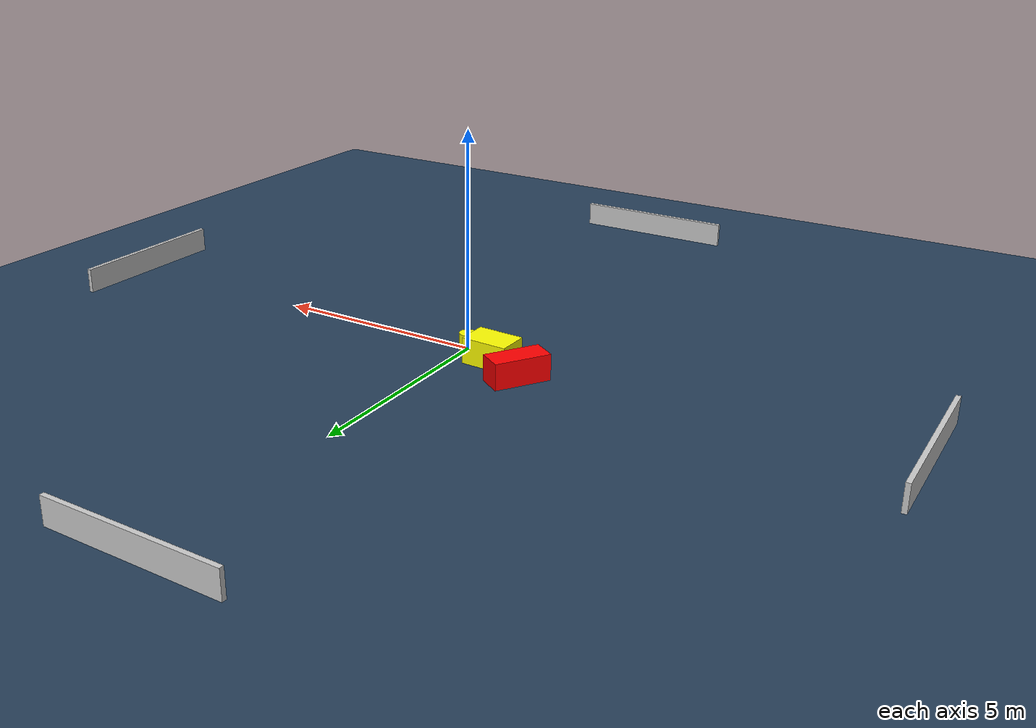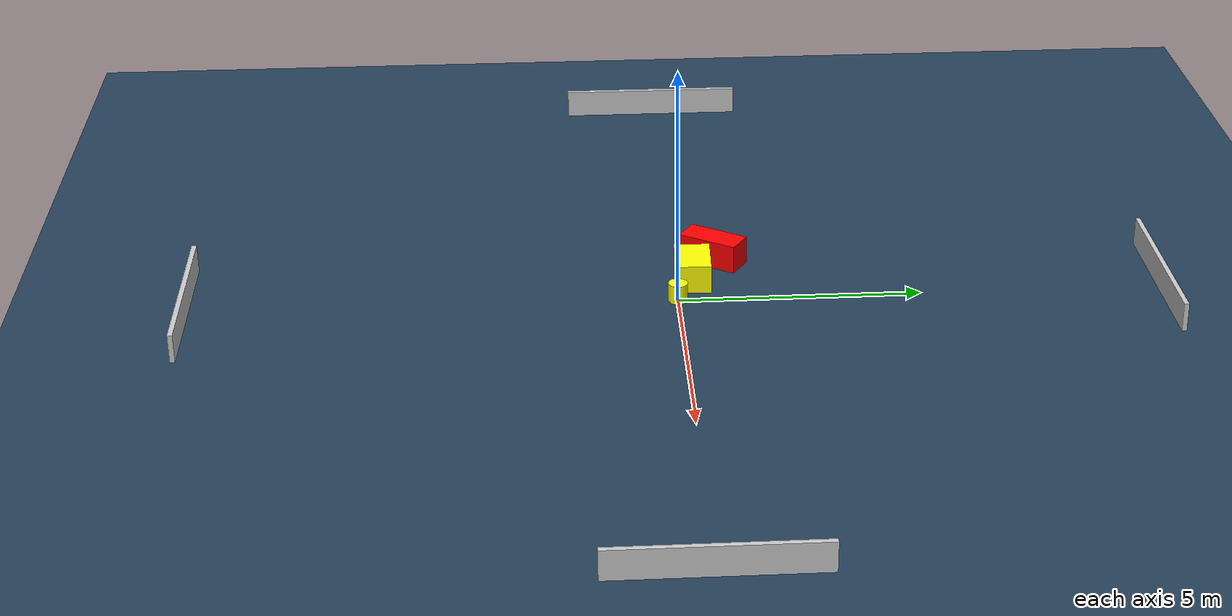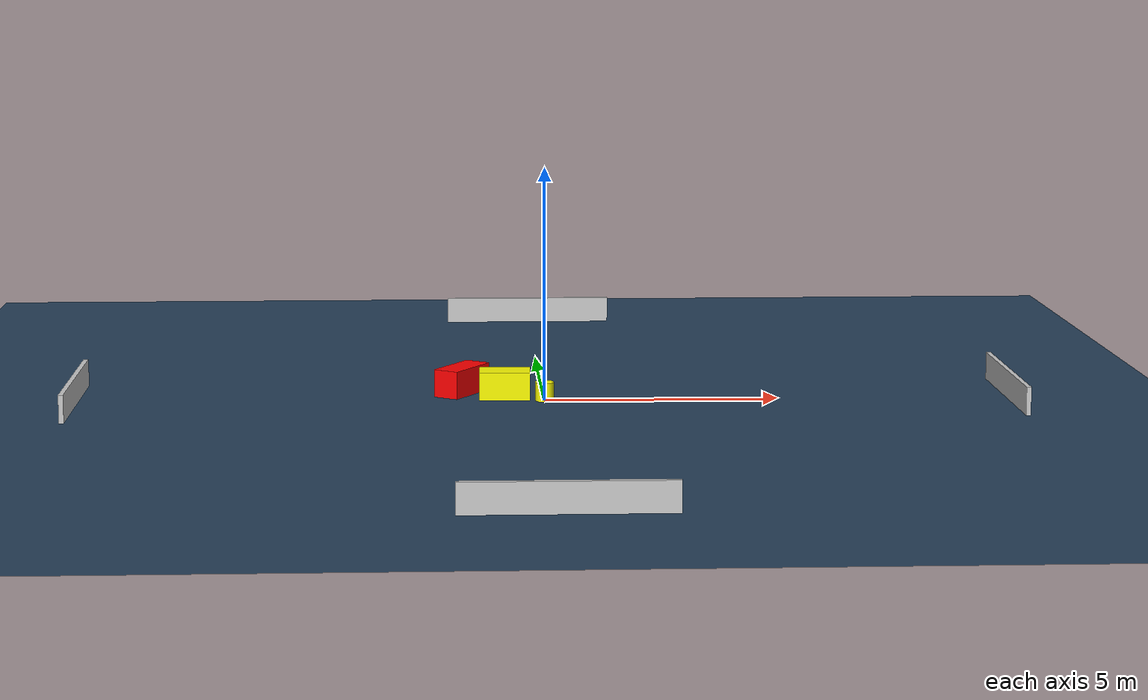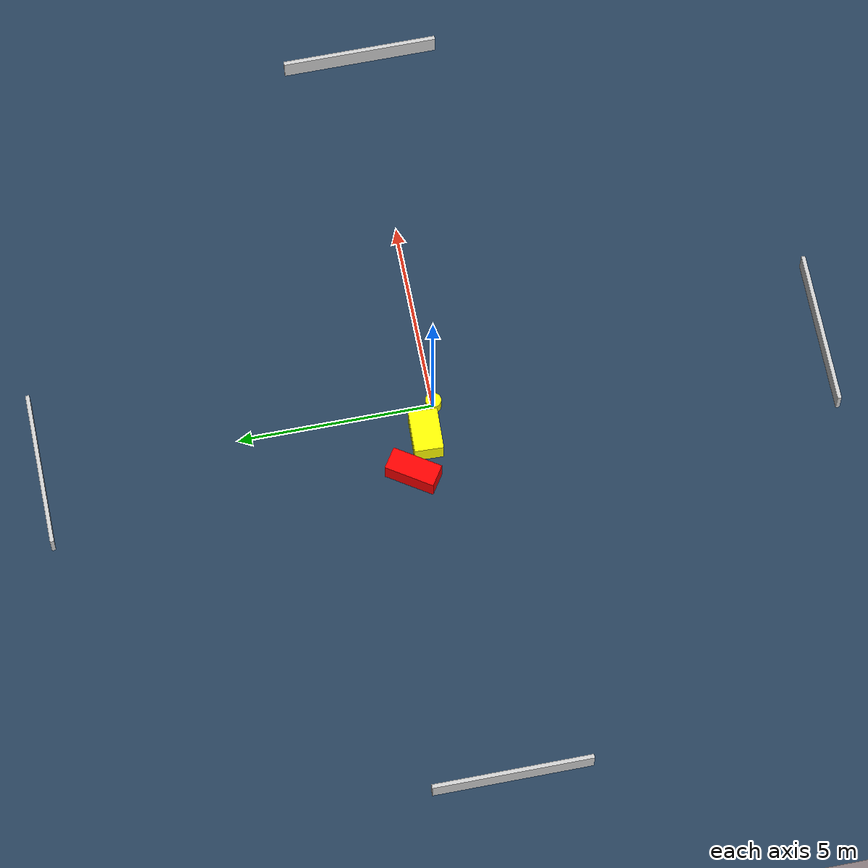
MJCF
<?xml version="1.0" ?>
<mujoco model="generated_environment">
  <option timestep="0.01" integrator="RK4" cone="elliptic"/>
  <default>
    <geom density="1"/>
  </default>
  <asset>
    <texture builtin="gradient" height="3072" name="skybox" rgb1="0.3 0.5 0.7" rgb2="0 0 0" type="skybox" width="512"/>
    <texture builtin="checker" height="300" name="groundplane" rgb1="0.2 0.3 0.4" rgb2="0.1 0.2 0.3" type="2d" width="300"/>
    <material name="groundplane" reflectance="0.2" texrepeat="5 5" texture="groundplane"/>
  </asset>
  <worldbody>
    <light dir="0 0 -1" directional="true" pos="0 0 1.5"/>
    <geom condim="3" friction="0.5 0.005 0.001" material="groundplane" name="floor" pos="0 0 0" size="0 0 0.05" type="plane"/>
    <body name="walls">
      <geom name="wall_1" condim="4" pos="-10.0 0.0 0.3" rgba="0.800000011920929 0.800000011920929 0.800000011920929 1.0" size="0.05 2.0 0.3" type="box"/>
      <geom name="wall_2" condim="4" pos="10.0 0.0 0.3" rgba="0.800000011920929 0.800000011920929 0.800000011920929 1.0" size="0.05 2.0 0.3" type="box"/>
      <geom name="wall_3" condim="4" pos="0.0 -10.0 0.3" rgba="0.800000011920929 0.800000011920929 0.800000011920929 1.0" size="2.0 0.05 0.3" type="box"/>
      <geom name="wall_4" condim="4" pos="0.0 10.0 0.3" rgba="0.800000011920929 0.800000011920929 0.800000011920929 1.0" size="2.0 0.05 0.3" type="box"/>
    </body>
    <body name="robot">
      <joint name="joint_x" type="slide" pos="0 0 0" axis="1 0 0"/>
      <joint name="joint_y" type="slide" pos="0 0 0" axis="0 1 0"/>
      <geom name="robot" type="cylinder" pos="0.0 0.0 0.2" size="0.2 0.2 0.0" mass="5.0" friction="1.0 0.005 0.0001" condim="4" rgba="1.0 1.0 0.0 1.0"/>
    </body>
    <body name="obstacle_1_movable">
      <geom name="obstacle_1_movable" condim="4" pos="-0.8420140758249333 0.35681451292002053 0.3" euler="0 0 267.9207398353695" friction="0.0 0.005 0.001" rgba="1.0 1.0 0.0 1.0" size="0.3697329788266687 0.5421233150689655 0.3" type="box" mass="0.1"/>
      <joint type="free"/>
    </body>
    <body name="obstacle_2_static">
      <geom name="obstacle_2_static" condim="4" pos="-1.7571077615670838 0.8525502759898765 0.3" euler="0 0 326.86120416447665" friction="0.0 0.005 0.001" rgba="1.0 0.0 0.0 1.0" size="0.29058883838885474 0.6501481763587657 0.3" type="box"/>
    </body>
  </worldbody>
  <actuator>
    <motor name="actuator_x" joint="joint_x" gear="1" ctrlrange="-1 1"/>
    <motor name="actuator_y" joint="joint_y" gear="1" ctrlrange="-1 1"/>
  </actuator>
</mujoco>
